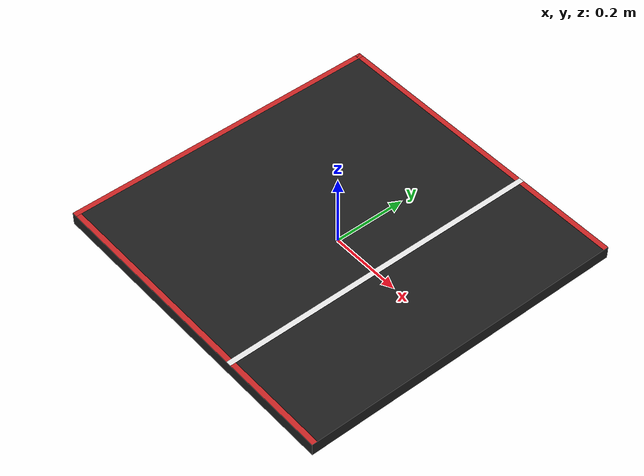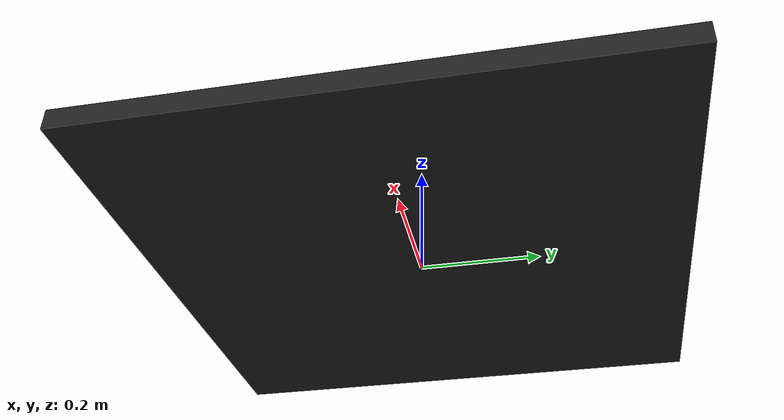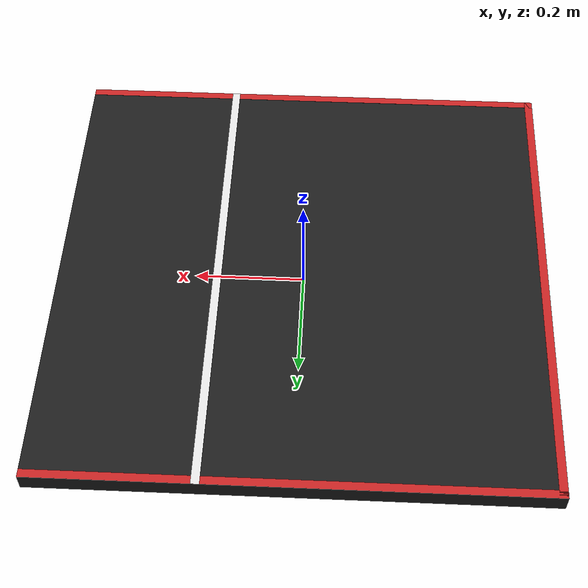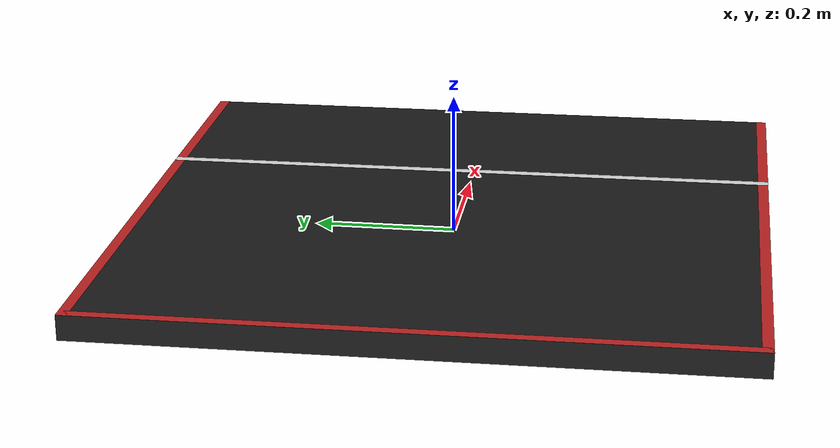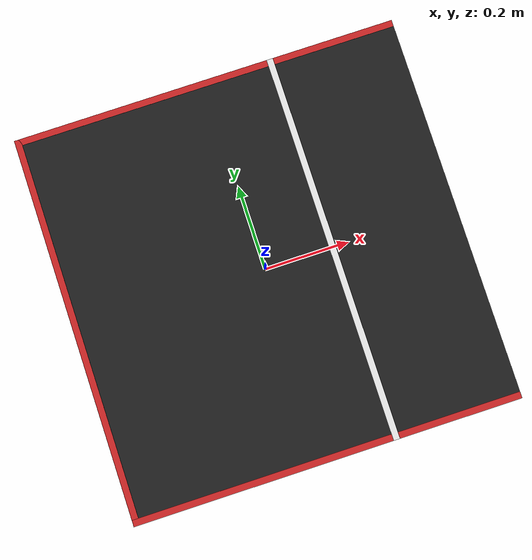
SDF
<?xml version="1.0" ?>
<sdf version="1.5">
  <model name="hac_start_panel">
    <static>true</static>
    <include>
      <uri>model://hac_black_panel</uri>
      <pose>0 0 0 0 0 0</pose>
    </include>

    <include>
      <uri>model://hac_red_tape</uri>
      <name>left_tape</name>
      <!-- panel half width (0.45) - tape half width (0.0075) = 0.04425 -->
      <pose>0 0.4425 0.035 0 0 0</pose>
    </include>

    <include>
      <uri>model://hac_red_tape</uri>
      <name>right_tape</name>
      <!-- panel half width (0.45) - tape half width (0.0075) = 0.04425 -->
      <pose>0 -0.4425 0.035 0 0 0</pose>
    </include>

    <include>
      <uri>model://hac_red_tape</uri>
      <name>bottom_tape</name>
      <!-- panel half width (0.45) - tape half width (0.0075) = 0.04425 -->
      <pose>-0.4425 0 0.035 0 0 1.5708</pose>
    </include>

    <include>
      <uri>model://hac_white_tape</uri>
      <name>white_tape</name>
      <!-- panel half width (0.45) - tape half width (0.0075) = 0.04425 -->
      <pose>0.1575 0 0.03505 0 0 1.5708</pose>
    </include>

    <joint name="joint1" type="fixed">
      <parent>hac_black_panel::link</parent>
      <child>left_tape::link</child>
      <pose>0 0 0 0 0 0</pose>
    </joint>

    <joint name="joint2" type="fixed">
      <parent>hac_black_panel::link</parent>
      <child>right_tape::link</child>
      <pose>0 0 0 0 0 0</pose>
    </joint>

    <joint name="joint3" type="fixed">
      <parent>hac_black_panel::link</parent>
      <child>bottom_tape::link</child>
      <pose>0 0 0 0 0 0</pose>
    </joint>

    <joint name="joint4" type="fixed">
      <parent>hac_black_panel::link</parent>
      <child>white_tape::link</child>
      <pose>0 0 0 0 0 0</pose>
    </joint>

  </model>
</sdf>

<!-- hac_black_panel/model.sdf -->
<sdf version="1.5">
  <model name="hac_black_panel">
    <link name="link">
      <pose>0 0 0.0175 0 0 0</pose>
      <inertial>
        <mass>10</mass>
        <inertia>
          <ixx>0.067602</ixx>
          <ixy>0</ixy>
          <ixz>0</ixz>
          <iyy>0.067602</iyy>
          <iyz>0</iyz>
          <izz>0.135</izz>
        </inertia>
      </inertial>

      <collision name='collision'>
        <geometry>
          <box>
            <size>0.9 0.9 0.035</size>
          </box>
        </geometry>
      </collision>

      <visual name='visual'>
        <geometry>
          <box>
            <size>0.9 0.9 0.035</size>
          </box>
        </geometry>
        <material>
          <script>
            <uri>file://media/materials/scripts/gazebo.material</uri>
            <name>Gazebo/Black</name>
          </script>
        </material>
      </visual>
    </link>

  </model>
</sdf>

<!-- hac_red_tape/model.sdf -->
<sdf version="1.5">
  <model name="hac_red_tape">
    <link name="link">
      <pose>0 0 0.00005 0 0 0</pose>
      <inertial>
        <mass>0.001</mass>
        <inertia>
          <ixx>1.8751e-8</ixx>
          <ixy>0</ixy>
          <ixz>0</ixz>
          <iyy>6.7500e-5</iyy>
          <iyz>0</iyz>
          <izz>6.7519e-5</izz>
        </inertia>
      </inertial>

      <collision name='collision'>
        <geometry>
          <box>
            <size>0.9 0.015 0.0001</size>
          </box>
        </geometry>
      </collision>

      <visual name='visual'>
        <geometry>
          <box>
            <size>0.9 0.015 0.0001</size>
          </box>
        </geometry>
        <material>
          <script>
            <uri>file://media/materials/scripts/gazebo.material</uri>
            <name>Gazebo/Red</name>
          </script>
        </material>
      </visual>
    </link>

  </model>
</sdf>

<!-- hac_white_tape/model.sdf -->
<sdf version="1.5">
  <model name="hac_white_tape">
    <link name="link">
      <pose>0 0 0.00005 0 0 0</pose>
      <inertial>
        <mass>0.001</mass>
        <inertia>
          <ixx>1.8751e-8</ixx>
          <ixy>0</ixy>
          <ixz>0</ixz>
          <iyy>6.7500e-5</iyy>
          <iyz>0</iyz>
          <izz>6.7519e-5</izz>
        </inertia>
      </inertial>

      <collision name='collision'>
        <geometry>
          <box>
            <size>0.9 0.015 0.0001</size>
          </box>
        </geometry>
      </collision>

      <visual name='visual'>
        <geometry>
          <box>
            <size>0.9 0.015 0.0001</size>
          </box>
        </geometry>
        <material>
          <script>
            <uri>file://media/materials/scripts/gazebo.material</uri>
            <name>Gazebo/White</name>
          </script>
        </material>
      </visual>
    </link>

  </model>
</sdf>
